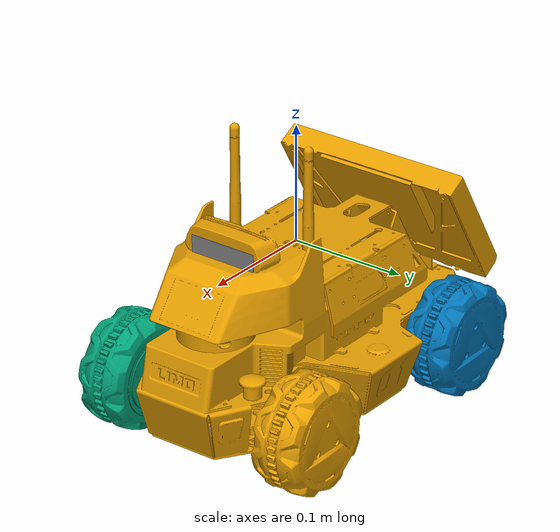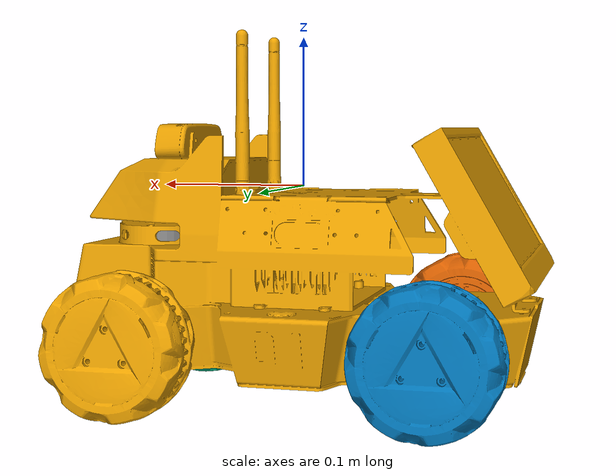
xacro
<?xml version="1.0"?>

<robot name="limo_ackerman" xmlns:xacro="http://ros.org/wiki/xacro">
    <!-- a lightweight robot geometry model -->
    <xacro:arg name="model_lite" default="true" />

    <xacro:include filename="$(find limo_description)/urdf/limo_properties.xacro" />
    <xacro:include filename="$(find limo_description)/urdf/limo_ackerman/limo_ackerman.gazebo" />

    <!-- Variables -->
    <xacro:property name="M_PI" value="3.14159"/>

    <!-- Vehicle Geometries -->
    <xacro:property name="base_x_size" value="0.13" />
    <xacro:property name="base_y_size" value="0.12" />
    <xacro:property name="base_z_size" value="0.1" />

    <xacro:property name="wheelbase" value="0.2"/>
    <xacro:property name="track" value="0.13"/>
    <xacro:property name="wheel_vertical_offset" value="-0.10" />
    <xacro:property name="base_mass" value="2.1557"/>

    <xacro:property name="wheel_length" value="0.001" />
    <xacro:property name="wheel_radius" value="0.045" />

    <link name="base_link">
        <visual>
            <origin xyz="0 0 -0.15" rpy="0 0 1.57" />
            <geometry>
                 <mesh filename="file://$(find limo_description)/meshes/limo_base_lite.dae" scale="1 1 1"/>
            </geometry>
        </visual>
        <collision>
            <!--origin xyz="0 0 -0.15" rpy="0 0 1.57" /-->
            <origin xyz="0 0 0" rpy="0 0 0" />
          <geometry>
              <box size="${base_x_size} ${base_y_size} ${base_z_size}"/>
          </geometry>
        </collision>
    </link>

    <link name="inertial_link">
        <inertial>
            <origin xyz="0.0 0.0 0.0" />
            <mass value="${base_mass}" />
            <inertia ixx="0.0043832566666666675" ixy="0" ixz="0"
                     iyy="0.004832360833333334" iyz="0"
                     izz="0.005622784166666667" />
        </inertial>
    </link>

    <link name="base_footprint"/>

    <joint name="base_joint" type="fixed">
      <parent link="base_link"/>
      <child link="base_footprint"/>
      <origin xyz="0.0 0.0 0.15" rpy="0 0 0"/>
    </joint>

    <joint name="inertial_joint" type="fixed">
        <origin xyz="0 0 0" rpy="0 0 0" />
        <parent link="base_link" />
        <child link="inertial_link" />
    </joint>

    <xacro:limo_laser parent_prefix="base_link" frame_prefix="laser">
        <origin xyz="0.103 0 -0.034" rpy="0 0 0"/>
    </xacro:limo_laser>

    <xacro:limo_depth_camera parent_prefix="base_link" frame_prefix="depth_camera">
        <origin xyz="0.084 0 0.026" rpy="0 0 0"/>
    </xacro:limo_depth_camera>

    <xacro:limo_imu parent_prefix="base_link" frame_prefix="imu">
        <origin xyz="0.0 0 -0.1" rpy="0 0 0"/>
    </xacro:limo_imu>

  <xacro:limo_left_steering_hinge parent_prefix="base_link" wheel_prefix="front_left">
    <origin xyz="${wheelbase/2} ${track/2} ${wheel_vertical_offset}" rpy="0 0  0" />
  </xacro:limo_left_steering_hinge>

  <xacro:limo_right_steering_hinge parent_prefix="base_link" wheel_prefix="front_right">
    <origin xyz="${wheelbase/2} ${-track/2} ${wheel_vertical_offset}" rpy="${M_PI} 0 0" />
  </xacro:limo_right_steering_hinge>

        <link name="main_steering_link">
            <inertial>
              <mass value="0.25" />
              <inertia ixx="0.00525" ixy="0" ixz="0" iyy="0.00035" iyz="0" izz="0.00525" />
              <origin xyz="0 0 0" />

            </inertial>

        </link>

        <joint name="main_steering" type="revolute">
            <parent link="base_link"/>
            <child link="main_steering_link"/>
            <origin xyz="${wheelbase/2} 0.0 ${wheel_vertical_offset * -2.0}" rpy="${M_PI} 0 0" />
            <axis xyz="0 0 -1" />
            <limit lower="-0.523598767" upper="0.523598767" effort="1000" velocity="10.0" />
            <dynamics damping="0.0" friction="0.0"/>
        </joint>

    <xacro:limo_wheel parent_prefix="base_link" wheel_prefix="rear_left" reflect="1" model_lite="$(arg model_lite)">
        <origin xyz="${-wheelbase/2} ${track/2} ${wheel_vertical_offset}" rpy="0 0 0" />
    </xacro:limo_wheel>

    <xacro:limo_wheel parent_prefix="base_link" wheel_prefix="rear_right" reflect="-1" model_lite="$(arg model_lite)">
        <origin xyz="${-wheelbase/2} ${-track/2} ${wheel_vertical_offset}" rpy="${M_PI} 0 0" />
    </xacro:limo_wheel>

</robot>

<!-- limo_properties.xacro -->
<robot name="limo_properties" xmlns:xacro="http://ros.org/wiki/xacro">
     <xacro:macro name="limo_wheel" params="parent_prefix wheel_prefix reflect model_lite *joint_pose visual_on:=true fixed_on:=false">
        <link name="${wheel_prefix}_wheel_link">
            <inertial>
                <origin xyz="0 0 0" />
                <mass value="0.5" />
                <inertia ixx="0.01055" ixy="0" ixz="0" iyy="0.00075" iyz="0" izz="0.01055" />
            </inertial>
            <visual>
                <origin xyz="0 0 0" rpy="0 0 0" />
                <geometry>
                    <xacro:if value="${model_lite}">
                        <mesh filename="file://$(find limo_description)/meshes/limo_wheel_lite.dae"/>
                    </xacro:if>
                    <xacro:unless value="${model_lite}">
                        <mesh filename="file://$(find limo_description)/meshes/limo_wheel.dae"/>
                    </xacro:unless>
                </geometry>
            </visual>
            <collision>
              <origin xyz="0 ${wheel_length/2} 0" rpy="1.57 0 0" />
              <geometry>
                  <cylinder length="${wheel_length}" radius="${wheel_radius}" />
              </geometry>
            </collision>
        </link>

        <joint name="${wheel_prefix}_wheel" type="continuous">
            <parent link="${parent_prefix}"/>
            <child link="${wheel_prefix}_wheel_link"/>
            <xacro:insert_block name="joint_pose"/>
            <axis xyz="0 ${reflect*1} 0"/>
        </joint>
    </xacro:macro>

    <xacro:macro name="limo_mecanum_wheel_1" params="parent_prefix wheel_prefix reflect *joint_pose">
        <link name="${wheel_prefix}_wheel_link">
            <inertial>
                <origin xyz="0 0 0" />
                <mass value="0.5" />
                <inertia ixx="0.01055" ixy="0" ixz="0" iyy="0.00075" iyz="0" izz="0.01055" />
            </inertial>
            <visual>
                <origin xyz="0.01 -0.064 0.064" rpy="0 0 -1.57" />
                <geometry>
                     <mesh filename="file://$(find limo_description)/meshes/mec_wheel_front_left.dae" />
                </geometry>
            </visual>
            <collision>
              <origin xyz="0 ${wheel_length/2} 0" rpy="1.57 0 0" />
              <geometry>
                  <cylinder length="${wheel_length}" radius="${wheel_radius}" />
              </geometry>
            </collision>
        </link>

        <joint name="${wheel_prefix}_wheel" type="continuous">
            <parent link="${parent_prefix}"/>
            <child link="${wheel_prefix}_wheel_link"/>
            <xacro:insert_block name="joint_pose"/>
            <axis xyz="0 ${reflect*1} 0"/>
        </joint>
    </xacro:macro>

    <xacro:macro name="limo_mecanum_wheel_2" params="parent_prefix wheel_prefix reflect *joint_pose">
        <link name="${wheel_prefix}_wheel_link">
            <inertial>
                <origin xyz="0 0 0" />
                <mass value="0.5" />
                <inertia ixx="0.01055" ixy="0" ixz="0" iyy="0.00075" iyz="0" izz="0.01055" />
            </inertial>
            <visual>
                <origin xyz="0 0 0" rpy="0 0 0" />
                <geometry>
                      <mesh filename="file://$(find limo_description)/meshes/mec_wheel_front_right.dae" />

                </geometry>
            </visual>
            <collision>
              <origin xyz="0 ${wheel_length/2} 0" rpy="1.57 0 0" />
              <geometry>
                  <cylinder length="${wheel_length}" radius="${wheel_radius}" />
              </geometry>
            </collision>
        </link>

        <joint name="${wheel_prefix}_wheel" type="continuous">
            <parent link="${parent_prefix}"/>
            <child link="${wheel_prefix}_wheel_link"/>
            <xacro:insert_block name="joint_pose"/>
            <axis xyz="0 ${reflect*1} 0"/>
        </joint>
    </xacro:macro>

    <xacro:macro name="limo_left_steering_hinge" params="parent_prefix wheel_prefix *joint_pose">
        <link name="${wheel_prefix}">
            <inertial>
              <mass value="0.25" />
              <inertia ixx="0.00525" ixy="0" ixz="0" iyy="0.00035" iyz="0" izz="0.00525" />
              <origin xyz="0 0 0" />

            </inertial>
            <visual>
                <origin xyz="0 0 0" rpy="0 0 0" />
                <geometry>
                  <cylinder length="0.0001" radius="0.0001" />
                </geometry>
            </visual>
        </link>

        <joint name="${wheel_prefix}_steering" type="revolute">
            <parent link="${parent_prefix}"/>
            <child link="${wheel_prefix}"/>
            <xacro:insert_block name="joint_pose"/>
            <axis xyz="0 0 1" />
            <limit lower="-0.523598767" upper="0.523598767" effort="1000" velocity="1.0" />
            <dynamics damping="0.0" friction="2.0"/>

        </joint>

        <link name="${wheel_prefix}_wheel_link">
          <inertial>
            <mass value="0.25" />
            <inertia ixx="0.00525" ixy="0" ixz="0" iyy="0.00035" iyz="0" izz="0.00525" />
            <origin xyz="0 0 0" />

          </inertial>
          <visual>
              <origin xyz="0 0 0" rpy="0 0 0" />
              <geometry>
               <mesh filename="file://$(find limo_description)/meshes/limo_wheel_lite.dae"/>
              </geometry>
          </visual>
          <collision>
            <origin xyz="0 ${wheel_length/2} 0" rpy="1.57 0 0" />
            <geometry>
                <cylinder length="${wheel_length}" radius="${wheel_radius}" />
            </geometry>
          </collision>
      </link>
      <joint name="${wheel_prefix}_wheel" type="continuous">
          <parent link="${wheel_prefix}"/>
          <child link="${wheel_prefix}_wheel_link"/>
          <origin xyz="0 0 0" rpy="0 0  0" />
          <axis xyz="0 1 0"/>
          <limit effort="100.0" velocity="10.0"/>
      </joint>
    </xacro:macro>

    <!-- Ackerman drive specific -->
    <xacro:macro name="limo_right_steering_hinge" params="parent_prefix wheel_prefix *joint_pose">
        <link name="${wheel_prefix}">
          <inertial>
            <mass value="0.25" />
            <inertia ixx="0.00525" ixy="0" ixz="0" iyy="0.00035" iyz="0" izz="0.00525" />
            <origin xyz="0 0 0" />

          </inertial>
            <visual>
                <origin xyz="0 0 0" rpy="0 0 0" />
                <geometry>
                  <cylinder length="0.0001" radius="0.0001" />
                </geometry>
            </visual>
        </link>

        <joint name="${wheel_prefix}_steering" type="revolute">
            <parent link="${parent_prefix}"/>
            <child link="${wheel_prefix}"/>
            <xacro:insert_block name="joint_pose"/>
            <axis xyz="0 0 -1"/>
            <limit lower="-0.523598767" upper="0.523598767" effort="1000" velocity="1.0" />
            <dynamics damping="0.0" friction="2.0"/>
        </joint>

        <link name="front_right_wheel_link">
          <inertial>
            <mass value="0.25" />
            <inertia ixx="0.00525" ixy="0" ixz="0" iyy="0.00035" iyz="0" izz="0.00525" />
            <origin xyz="0 0 0" />
          </inertial>
          <visual>
              <origin xyz="0 0 0" rpy="0 0 0" />
              <geometry>
               <mesh filename="file://$(find limo_description)/meshes/limo_wheel_lite.dae"/>
              </geometry>
          </visual>
          <collision>
            <origin xyz="0 ${wheel_length/2} 0" rpy="1.57 0 0" />
            <geometry>
                <cylinder length="${wheel_length}" radius="${wheel_radius}" />
            </geometry>
          </collision>
      </link>

      <joint name="${wheel_prefix}_wheel" type="continuous">
          <parent link="${wheel_prefix}"/>
          <child link="front_right_wheel_link"/>
          <origin xyz="0 0 0" rpy="0 0  0" />
          <axis xyz="0 -1 0"/>
          <limit effort="100.0" velocity="10.0"/>
      </joint>
    </xacro:macro>

    <xacro:macro name="limo_laser" params="parent_prefix frame_prefix *joint_pose">
        <link name='${frame_prefix}_link'>
            <pose>0 0 0 0 0 0</pose>
            <inertial>
                <mass value="0.1"/>
                <origin xyz="0.0 0 0" rpy="0 0 0"/>
                <inertia
                    ixx="1e-6" ixy="0" ixz="0"
                    iyy="1e-6" iyz="0"
                    izz="1e-6"
                />
            </inertial>
            <visual name='laser_visual'>
                <origin xyz="0 0 0" rpy="0 0 0"/>
                <geometry>
                    <cylinder radius="0.02" length="0.01"/>
                </geometry>
                <material name='laser_material'>
                    <color rgba="0.5 0.5 0.5 1.0" />
                    <ambient>0.1 0.1 0.1 1</ambient>
                    <diffuse>0.1 0.1 0.2 1</diffuse>
                    <specular>0 0 0 0</specular>
                    <emissive>0 0 0 1</emissive>
                </material>
            </visual>
            <collision name='laser_collision'>
                <origin xyz="0 0 0" rpy="0 0 0"/>
                <geometry>
                    <cylinder radius="0.032" length="0.016"/>
                </geometry>
            </collision>
        </link>
        <joint type="fixed" name="laser_joint">
            <xacro:insert_block name="joint_pose"/>
            <child link="${frame_prefix}_link"/>
            <parent link="${parent_prefix}"/>
        </joint>
        <gazebo reference="${frame_prefix}_link">
            <material>Gazebo/Yellow</material>
        </gazebo>
    </xacro:macro>

    <xacro:macro name="limo_depth_camera" params="parent_prefix frame_prefix *joint_pose">
        <link name='${frame_prefix}_link'>
            <pose>0 0 0 0 0 0</pose>
            <inertial>
                <mass value="0.1"/>
                <origin xyz="0.0 0 0" rpy="0 0 0"/>
                <inertia
                    ixx="1e-6" ixy="0" ixz="0"
                    iyy="1e-6" iyz="0"
                    izz="1e-6"
                />
            </inertial>
            <visual name='depth_camera_visual'>
                <origin xyz="0 0 0" rpy="0 0 0"/>
                <geometry>
                    <box size="0.02 0.06 0.015"/>
                </geometry>
                <material name='depth_camera_material'>
                    <color rgba="0.5 0.5 0.5 1.0" />
                    <ambient>0.1 0.1 0.1 1</ambient>
                    <diffuse>0.1 0.1 0.2 1</diffuse>
                    <specular>0 0 0 0</specular>
                    <emissive>0 0 0 1</emissive>
                </material>
            </visual>
            <collision name='depth_camera_collision'>
                <origin xyz="0 0 0" rpy="0 0 0"/>
                <geometry>
                    <box size="0.02 0.06 0.015"/>
                </geometry>
            </collision>

        </link>

        <joint type="fixed" name="depth_camera_joint">
            <xacro:insert_block name="joint_pose"/>
            <child link="${frame_prefix}_link"/>
            <parent link="${parent_prefix}"/>
        </joint>
        <link name="depth_link"></link>

        <joint name="${frame_prefix}_to_camera_joint" type="fixed">
            <origin xyz="0 0 0" rpy="${-M_PI/2} 0 ${-M_PI/2} "/>
            <parent link="${frame_prefix}_link"/>
            <child link="depth_link"/>
          </joint>

        <gazebo reference="${frame_prefix}_link">
            <material>Gazebo/Yellow</material>
        </gazebo>
    </xacro:macro>

    <xacro:macro name="limo_imu" params="parent_prefix frame_prefix  *joint_pose">
        <link name='${frame_prefix}_link'>
            <pose>0 0 0 0 0 0</pose>
            <inertial>
                <mass value="0.01"/>
                <origin xyz="0.0 0 0" rpy="0 0 0"/>
                <inertia
                    ixx="1e-7" ixy="0" ixz="0"
                    iyy="1e-7" iyz="0"
                    izz="1e-7"
                />
            </inertial>
            <visual name='imu_visual'>
                <origin xyz="0 0 0" rpy="0 0 0"/>
                <geometry>
                    <box size="0.001 0.001 0.001"/>
                </geometry>
                <material name='imu_material'>
                    <color rgba="0.5 0.5 0.5 1.0" />
                    <ambient>0.1 0.1 0.1 1</ambient>
                    <diffuse>0.1 0.1 0.2 1</diffuse>
                    <specular>0 0 0 0</specular>
                    <emissive>0 0 0 1</emissive>
                </material>
            </visual>
            <collision name='imu_collision'>
                <origin xyz="0 0 0" rpy="0 0 0"/>
                <geometry>
                    <box size="0.001 0.001 0.001"/>
                </geometry>
            </collision>
        </link>
        <joint type="fixed" name="imu_joint">
            <xacro:insert_block name="joint_pose"/>
            <child link="${frame_prefix}_link"/>
            <parent link="${parent_prefix}"/>
        </joint>
        <gazebo reference="${frame_prefix}_link">
            <material>Gazebo/Yellow</material>
        </gazebo>
    </xacro:macro>
</robot>
